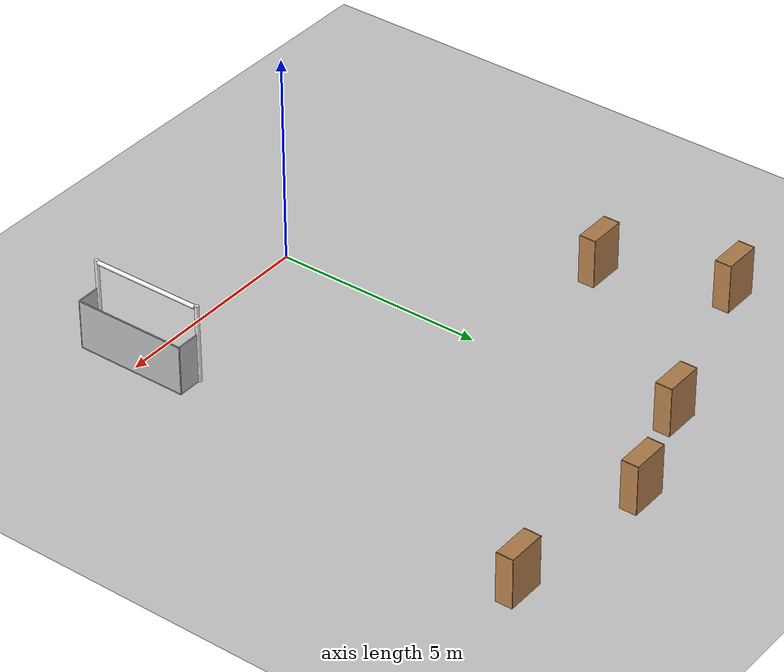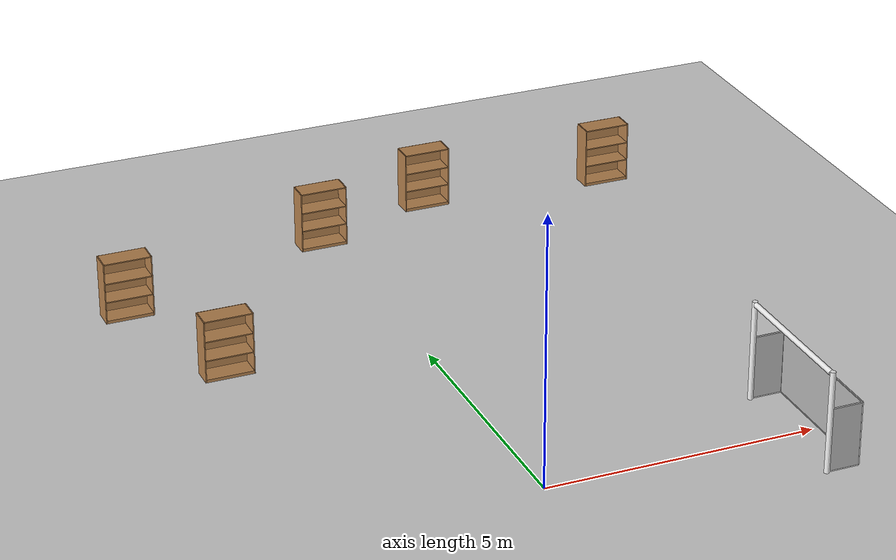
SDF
<sdf version="1.6">
 <world name="default">
  <model name="ground_plane">
   <static>1</static>
   <link name="link">
    <collision name="collision">
     <geometry><plane><normal>0 0 1</normal><size>100 100</size></plane></geometry>
     <surface><friction><ode><mu>100</mu><mu2>50</mu2></ode></friction></surface>
    </collision>
    <visual name="visual">
     <cast_shadows>0</cast_shadows>
     <geometry><plane><normal>0 0 1</normal><size>100 100</size></plane></geometry>
     <material>
      <script><uri>file://media/materials/scripts/gazebo.material</uri><name>Gazebo/Grey</name></script>
     </material>
    </visual>
   </link>
  </model>
  <model name="teensize_goal">
   <static>1</static>
   <link name="left_post">
    <pose>0 1.35 0.95 0 -0 0</pose>
    <collision name="collision">
     <geometry><cylinder><radius>0.05</radius><length>1.9</length></cylinder></geometry>
    </collision>
    <visual name="visual">
     <geometry><cylinder><radius>0.05</radius><length>1.9</length></cylinder></geometry>
     <material>
      <script><uri>file://media/materials/scripts/gazebo.material</uri><name>Gazebo/White</name></script>
     </material>
    </visual>
   </link>
   <link name="left_support_horiz_lower">
    <pose>0.3 1.35 0.01 0 -0 0</pose>
    <collision name="collision"><geometry><box><size>0.6 0.02 0.02</size></box></geometry></collision>
    <visual name="visual">
     <geometry><box><size>0.6 0.02 0.02</size></box></geometry>
     <material>
      <script><uri>file://media/materials/scripts/gazebo.material</uri><name>Gazebo/White</name></script>
     </material>
    </visual>
   </link>
   <link name="left_support_horiz_upper">
    <pose>0.3 1.35 1.2 0 -0 0</pose>
    <collision name="collision"><geometry><box><size>0.6 0.02 0.02</size></box></geometry></collision>
    <visual name="visual">
     <geometry><box><size>0.6 0.02 0.02</size></box></geometry>
     <material>
      <script><uri>file://media/materials/scripts/gazebo.material</uri><name>Gazebo/White</name></script>
     </material>
    </visual>
   </link>
   <link name="left_support_vertical">
    <pose>0.6 1.35 0.6 3.14159 1.57079 3.14159</pose>
    <collision name="collision"><geometry><box><size>1.2 0.02 0.02</size></box></geometry></collision>
    <visual name="visual">
     <geometry><box><size>1.2 0.02 0.02</size></box></geometry>
     <material>
      <script><uri>file://media/materials/scripts/gazebo.material</uri><name>Gazebo/White</name></script>
     </material>
    </visual>
   </link>
   <link name="right_support_horiz_lower">
    <pose>0.3 -1.35 0.01 0 -0 0</pose>
    <collision name="collision"><geometry><box><size>0.6 0.02 0.02</size></box></geometry></collision>
    <visual name="visual">
     <geometry><box><size>0.6 0.02 0.02</size></box></geometry>
     <material>
      <script><uri>file://media/materials/scripts/gazebo.material</uri><name>Gazebo/White</name></script>
     </material>
    </visual>
   </link>
   <link name="right_support_horiz_upper">
    <pose>0.3 -1.35 1.2 0 -0 0</pose>
    <collision name="collision"><geometry><box><size>0.6 0.02 0.02</size></box></geometry></collision>
    <visual name="visual">
     <geometry><box><size>0.6 0.02 0.02</size></box></geometry>
     <material>
      <script><uri>file://media/materials/scripts/gazebo.material</uri><name>Gazebo/White</name></script>
     </material>
    </visual>
   </link>
   <link name="right_support_vertical">
    <pose>0.6 -1.35 0.6 3.14159 1.57079 3.14159</pose>
    <collision name="collision"><geometry><box><size>1.2 0.02 0.02</size></box></geometry></collision>
    <visual name="visual">
     <geometry><box><size>1.2 0.02 0.02</size></box></geometry>
     <material>
      <script><uri>file://media/materials/scripts/gazebo.material</uri><name>Gazebo/White</name></script>
     </material>
    </visual>
   </link>
   <link name="center_support_horiz_lower">
    <pose>0.6 0 0.01 3.14159 1.57079 3.14159</pose>
    <collision name="collision"><geometry><box><size>0.02 2.7 0.02</size></box></geometry></collision>
    <visual name="visual">
     <geometry><box><size>0.02 2.7 0.02</size></box></geometry>
     <material>
      <script><uri>file://media/materials/scripts/gazebo.material</uri><name>Gazebo/White</name></script>
     </material>
    </visual>
   </link>
   <link name="center_support_horiz_upper">
    <pose>0.6 0 1.2 3.14159 1.57079 3.14159</pose>
    <collision name="collision"><geometry><box><size>0.02 2.7 0.02</size></box></geometry></collision>
    <visual name="visual">
     <geometry><box><size>0.02 2.7 0.02</size></box></geometry>
     <material>
      <script><uri>file://media/materials/scripts/gazebo.material</uri><name>Gazebo/White</name></script>
     </material>
    </visual>
   </link>
   <link name="right_post">
    <pose>0 -1.35 0.95 0 -0 0</pose>
    <collision name="collision">
     <geometry><cylinder><radius>0.05</radius><length>1.9</length></cylinder></geometry>
    </collision>
    <visual name="visual">
     <geometry><cylinder><radius>0.05</radius><length>1.9</length></cylinder></geometry>
     <material>
      <script><uri>file://media/materials/scripts/gazebo.material</uri><name>Gazebo/White</name></script>
     </material>
    </visual>
   </link>
   <link name="crossbar">
    <pose>0 0 1.85 1.57 1.57 0</pose>
    <collision name="collision">
     <geometry><cylinder><radius>0.05</radius><length>2.6</length></cylinder></geometry>
    </collision>
    <visual name="visual">
     <geometry><cylinder><radius>0.05</radius><length>2.6</length></cylinder></geometry>
     <material>
      <script><uri>file://media/materials/scripts/gazebo.material</uri><name>Gazebo/White</name></script>
     </material>
    </visual>
   </link>
   <link name="center_net">
    <pose>0.6 0 0.6 0 -0 0</pose>
    <collision name="collision"><geometry><box><size>0.01 2.7 1.2</size></box></geometry></collision>
    <visual name="visual">
     <geometry><box><size>0.01 2.7 1.2</size></box></geometry>
     <material>
      <script>
       <uri>model://teensize_goal/materials/scripts/</uri>
       <uri>model://teensize_goal/materials/textures/</uri>
       <name>RoboCup/Net</name>
      </script>
     </material>
    </visual>
   </link>
   <link name="left_net">
    <pose>0.3 1.35 0.6 0 -0 0</pose>
    <collision name="collision"><geometry><box><size>0.6 0.01 1.2</size></box></geometry></collision>
    <visual name="visual">
     <geometry><box><size>0.6 0.01 1.2</size></box></geometry>
     <material>
      <script>
       <uri>model://teensize_goal/materials/scripts/</uri>
       <uri>model://teensize_goal/materials/textures/</uri>
       <name>RoboCup/Net</name>
      </script>
     </material>
    </visual>
   </link>
   <link name="right_net">
    <pose>0.3 -1.35 0.6 0 -0 0</pose>
    <collision name="collision"><geometry><box><size>0.6 0.01 1.2</size></box></geometry></collision>
    <visual name="visual">
     <geometry><box><size>0.6 0.01 1.2</size></box></geometry>
     <material>
      <script>
       <uri>model://teensize_goal/materials/scripts/</uri>
       <uri>model://teensize_goal/materials/textures/</uri>
       <name>RoboCup/Net</name>
      </script>
     </material>
    </visual>
   </link>
   <pose>4.525 0 0 0 -0 0</pose>
  </model>
  <model name="bookshelf_0">
   <static>1</static>
   <link name="link">
    <inertial><mass>1</mass></inertial>
    <collision name="back">
     <pose>0 0.005 0.6 0 -0 0</pose>
     <geometry><box><size>0.9 0.01 1.2</size></box></geometry>
    </collision>
    <visual name="visual1">
     <pose>0 0.005 0.6 0 -0 0</pose>
     <geometry><box><size>0.9 0.01 1.2</size></box></geometry>
     <material>
      <script><uri>file://media/materials/scripts/gazebo.material</uri><name>Gazebo/Wood</name></script>
     </material>
    </visual>
    <collision name="left_side">
     <pose>0.45 -0.195 0.6 0 -0 0</pose>
     <geometry><box><size>0.02 0.4 1.2</size></box></geometry>
    </collision>
    <visual name="visual2">
     <pose>0.45 -0.195 0.6 0 -0 0</pose>
     <geometry><box><size>0.02 0.4 1.2</size></box></geometry>
     <material>
      <script><uri>file://media/materials/scripts/gazebo.material</uri><name>Gazebo/Wood</name></script>
     </material>
    </visual>
    <collision name="right_side">
     <pose>-0.45 -0.195 0.6 0 -0 0</pose>
     <geometry><box><size>0.02 0.4 1.2</size></box></geometry>
    </collision>
    <visual name="visual3">
     <pose>-0.45 -0.195 0.6 0 -0 0</pose>
     <geometry><box><size>0.02 0.4 1.2</size></box></geometry>
     <material>
      <script><uri>file://media/materials/scripts/gazebo.material</uri><name>Gazebo/Wood</name></script>
     </material>
    </visual>
    <collision name="bottom">
     <pose>0 -0.195 0.03 0 -0 0</pose>
     <geometry><box><size>0.88 0.4 0.06</size></box></geometry>
    </collision>
    <visual name="visual4">
     <pose>0 -0.195 0.03 0 -0 0</pose>
     <geometry><box><size>0.88 0.4 0.06</size></box></geometry>
     <material>
      <script><uri>file://media/materials/scripts/gazebo.material</uri><name>Gazebo/Wood</name></script>
     </material>
    </visual>
    <collision name="top">
     <pose>0 -0.195 1.19 0 -0 0</pose>
     <geometry><box><size>0.88 0.4 0.02</size></box></geometry>
    </collision>
    <visual name="visual5">
     <pose>0 -0.195 1.19 0 -0 0</pose>
     <geometry><box><size>0.88 0.4 0.02</size></box></geometry>
     <material>
      <script><uri>file://media/materials/scripts/gazebo.material</uri><name>Gazebo/Wood</name></script>
     </material>
    </visual>
    <collision name="low_shelf">
     <pose>0 -0.195 0.43 0 -0 0</pose>
     <geometry><box><size>0.88 0.4 0.02</size></box></geometry>
    </collision>
    <visual name="visual6">
     <pose>0 -0.195 0.43 0 -0 0</pose>
     <geometry><box><size>0.88 0.4 0.02</size></box></geometry>
     <material>
      <script><uri>file://media/materials/scripts/gazebo.material</uri><name>Gazebo/Wood</name></script>
     </material>
    </visual>
    <collision name="high_shelf">
     <pose>0 -0.195 0.8 0 -0 0</pose>
     <geometry><box><size>0.88 0.4 0.02</size></box></geometry>
    </collision>
    <visual name="visual7">
     <pose>0 -0.195 0.8 0 -0 0</pose>
     <geometry><box><size>0.88 0.4 0.02</size></box></geometry>
     <material>
      <script><uri>file://media/materials/scripts/gazebo.material</uri><name>Gazebo/Wood</name></script>
     </material>
    </visual>
   </link>
   <pose>-0.198887 10.1235 0 0 -0 0</pose>
  </model>
  <model name="bookshelf_1">
   <static>1</static>
   <link name="link">
    <inertial><mass>1</mass></inertial>
    <collision name="back">
     <pose>0 0.005 0.6 0 -0 0</pose>
     <geometry><box><size>0.9 0.01 1.2</size></box></geometry>
    </collision>
    <visual name="visual1">
     <pose>0 0.005 0.6 0 -0 0</pose>
     <geometry><box><size>0.9 0.01 1.2</size></box></geometry>
     <material>
      <script><uri>file://media/materials/scripts/gazebo.material</uri><name>Gazebo/Wood</name></script>
     </material>
    </visual>
    <collision name="left_side">
     <pose>0.45 -0.195 0.6 0 -0 0</pose>
     <geometry><box><size>0.02 0.4 1.2</size></box></geometry>
    </collision>
    <visual name="visual2">
     <pose>0.45 -0.195 0.6 0 -0 0</pose>
     <geometry><box><size>0.02 0.4 1.2</size></box></geometry>
     <material>
      <script><uri>file://media/materials/scripts/gazebo.material</uri><name>Gazebo/Wood</name></script>
     </material>
    </visual>
    <collision name="right_side">
     <pose>-0.45 -0.195 0.6 0 -0 0</pose>
     <geometry><box><size>0.02 0.4 1.2</size></box></geometry>
    </collision>
    <visual name="visual3">
     <pose>-0.45 -0.195 0.6 0 -0 0</pose>
     <geometry><box><size>0.02 0.4 1.2</size></box></geometry>
     <material>
      <script><uri>file://media/materials/scripts/gazebo.material</uri><name>Gazebo/Wood</name></script>
     </material>
    </visual>
    <collision name="bottom">
     <pose>0 -0.195 0.03 0 -0 0</pose>
     <geometry><box><size>0.88 0.4 0.06</size></box></geometry>
    </collision>
    <visual name="visual4">
     <pose>0 -0.195 0.03 0 -0 0</pose>
     <geometry><box><size>0.88 0.4 0.06</size></box></geometry>
     <material>
      <script><uri>file://media/materials/scripts/gazebo.material</uri><name>Gazebo/Wood</name></script>
     </material>
    </visual>
    <collision name="top">
     <pose>0 -0.195 1.19 0 -0 0</pose>
     <geometry><box><size>0.88 0.4 0.02</size></box></geometry>
    </collision>
    <visual name="visual5">
     <pose>0 -0.195 1.19 0 -0 0</pose>
     <geometry><box><size>0.88 0.4 0.02</size></box></geometry>
     <material>
      <script><uri>file://media/materials/scripts/gazebo.material</uri><name>Gazebo/Wood</name></script>
     </material>
    </visual>
    <collision name="low_shelf">
     <pose>0 -0.195 0.43 0 -0 0</pose>
     <geometry><box><size>0.88 0.4 0.02</size></box></geometry>
    </collision>
    <visual name="visual6">
     <pose>0 -0.195 0.43 0 -0 0</pose>
     <geometry><box><size>0.88 0.4 0.02</size></box></geometry>
     <material>
      <script><uri>file://media/materials/scripts/gazebo.material</uri><name>Gazebo/Wood</name></script>
     </material>
    </visual>
    <collision name="high_shelf">
     <pose>0 -0.195 0.8 0 -0 0</pose>
     <geometry><box><size>0.88 0.4 0.02</size></box></geometry>
    </collision>
    <visual name="visual7">
     <pose>0 -0.195 0.8 0 -0 0</pose>
     <geometry><box><size>0.88 0.4 0.02</size></box></geometry>
     <material>
      <script><uri>file://media/materials/scripts/gazebo.material</uri><name>Gazebo/Wood</name></script>
     </material>
    </visual>
   </link>
   <pose>-4.48308 8.75314 0 0 -0 0</pose>
  </model>
  <model name="bookshelf_2">
   <static>1</static>
   <link name="link">
    <inertial><mass>1</mass></inertial>
    <collision name="back">
     <pose>0 0.005 0.6 0 -0 0</pose>
     <geometry><box><size>0.9 0.01 1.2</size></box></geometry>
    </collision>
    <visual name="visual1">
     <pose>0 0.005 0.6 0 -0 0</pose>
     <geometry><box><size>0.9 0.01 1.2</size></box></geometry>
     <material>
      <script><uri>file://media/materials/scripts/gazebo.material</uri><name>Gazebo/Wood</name></script>
     </material>
    </visual>
    <collision name="left_side">
     <pose>0.45 -0.195 0.6 0 -0 0</pose>
     <geometry><box><size>0.02 0.4 1.2</size></box></geometry>
    </collision>
    <visual name="visual2">
     <pose>0.45 -0.195 0.6 0 -0 0</pose>
     <geometry><box><size>0.02 0.4 1.2</size></box></geometry>
     <material>
      <script><uri>file://media/materials/scripts/gazebo.material</uri><name>Gazebo/Wood</name></script>
     </material>
    </visual>
    <collision name="right_side">
     <pose>-0.45 -0.195 0.6 0 -0 0</pose>
     <geometry><box><size>0.02 0.4 1.2</size></box></geometry>
    </collision>
    <visual name="visual3">
     <pose>-0.45 -0.195 0.6 0 -0 0</pose>
     <geometry><box><size>0.02 0.4 1.2</size></box></geometry>
     <material>
      <script><uri>file://media/materials/scripts/gazebo.material</uri><name>Gazebo/Wood</name></script>
     </material>
    </visual>
    <collision name="bottom">
     <pose>0 -0.195 0.03 0 -0 0</pose>
     <geometry><box><size>0.88 0.4 0.06</size></box></geometry>
    </collision>
    <visual name="visual4">
     <pose>0 -0.195 0.03 0 -0 0</pose>
     <geometry><box><size>0.88 0.4 0.06</size></box></geometry>
     <material>
      <script><uri>file://media/materials/scripts/gazebo.material</uri><name>Gazebo/Wood</name></script>
     </material>
    </visual>
    <collision name="top">
     <pose>0 -0.195 1.19 0 -0 0</pose>
     <geometry><box><size>0.88 0.4 0.02</size></box></geometry>
    </collision>
    <visual name="visual5">
     <pose>0 -0.195 1.19 0 -0 0</pose>
     <geometry><box><size>0.88 0.4 0.02</size></box></geometry>
     <material>
      <script><uri>file://media/materials/scripts/gazebo.material</uri><name>Gazebo/Wood</name></script>
     </material>
    </visual>
    <collision name="low_shelf">
     <pose>0 -0.195 0.43 0 -0 0</pose>
     <geometry><box><size>0.88 0.4 0.02</size></box></geometry>
    </collision>
    <visual name="visual6">
     <pose>0 -0.195 0.43 0 -0 0</pose>
     <geometry><box><size>0.88 0.4 0.02</size></box></geometry>
     <material>
      <script><uri>file://media/materials/scripts/gazebo.material</uri><name>Gazebo/Wood</name></script>
     </material>
    </visual>
    <collision name="high_shelf">
     <pose>0 -0.195 0.8 0 -0 0</pose>
     <geometry><box><size>0.88 0.4 0.02</size></box></geometry>
    </collision>
    <visual name="visual7">
     <pose>0 -0.195 0.8 0 -0 0</pose>
     <geometry><box><size>0.88 0.4 0.02</size></box></geometry>
     <material>
      <script><uri>file://media/materials/scripts/gazebo.material</uri><name>Gazebo/Wood</name></script>
     </material>
    </visual>
   </link>
   <pose>-3.5213 5.94907 0 0 -0 0</pose>
  </model>
  <model name="bookshelf_3">
   <static>1</static>
   <link name="link">
    <inertial><mass>1</mass></inertial>
    <collision name="back">
     <pose>0 0.005 0.6 0 -0 0</pose>
     <geometry><box><size>0.9 0.01 1.2</size></box></geometry>
    </collision>
    <visual name="visual1">
     <pose>0 0.005 0.6 0 -0 0</pose>
     <geometry><box><size>0.9 0.01 1.2</size></box></geometry>
     <material>
      <script><uri>file://media/materials/scripts/gazebo.material</uri><name>Gazebo/Wood</name></script>
     </material>
    </visual>
    <collision name="left_side">
     <pose>0.45 -0.195 0.6 0 -0 0</pose>
     <geometry><box><size>0.02 0.4 1.2</size></box></geometry>
    </collision>
    <visual name="visual2">
     <pose>0.45 -0.195 0.6 0 -0 0</pose>
     <geometry><box><size>0.02 0.4 1.2</size></box></geometry>
     <material>
      <script><uri>file://media/materials/scripts/gazebo.material</uri><name>Gazebo/Wood</name></script>
     </material>
    </visual>
    <collision name="right_side">
     <pose>-0.45 -0.195 0.6 0 -0 0</pose>
     <geometry><box><size>0.02 0.4 1.2</size></box></geometry>
    </collision>
    <visual name="visual3">
     <pose>-0.45 -0.195 0.6 0 -0 0</pose>
     <geometry><box><size>0.02 0.4 1.2</size></box></geometry>
     <material>
      <script><uri>file://media/materials/scripts/gazebo.material</uri><name>Gazebo/Wood</name></script>
     </material>
    </visual>
    <collision name="bottom">
     <pose>0 -0.195 0.03 0 -0 0</pose>
     <geometry><box><size>0.88 0.4 0.06</size></box></geometry>
    </collision>
    <visual name="visual4">
     <pose>0 -0.195 0.03 0 -0 0</pose>
     <geometry><box><size>0.88 0.4 0.06</size></box></geometry>
     <material>
      <script><uri>file://media/materials/scripts/gazebo.material</uri><name>Gazebo/Wood</name></script>
     </material>
    </visual>
    <collision name="top">
     <pose>0 -0.195 1.19 0 -0 0</pose>
     <geometry><box><size>0.88 0.4 0.02</size></box></geometry>
    </collision>
    <visual name="visual5">
     <pose>0 -0.195 1.19 0 -0 0</pose>
     <geometry><box><size>0.88 0.4 0.02</size></box></geometry>
     <material>
      <script><uri>file://media/materials/scripts/gazebo.material</uri><name>Gazebo/Wood</name></script>
     </material>
    </visual>
    <collision name="low_shelf">
     <pose>0 -0.195 0.43 0 -0 0</pose>
     <geometry><box><size>0.88 0.4 0.02</size></box></geometry>
    </collision>
    <visual name="visual6">
     <pose>0 -0.195 0.43 0 -0 0</pose>
     <geometry><box><size>0.88 0.4 0.02</size></box></geometry>
     <material>
      <script><uri>file://media/materials/scripts/gazebo.material</uri><name>Gazebo/Wood</name></script>
     </material>
    </visual>
    <collision name="high_shelf">
     <pose>0 -0.195 0.8 0 -0 0</pose>
     <geometry><box><size>0.88 0.4 0.02</size></box></geometry>
    </collision>
    <visual name="visual7">
     <pose>0 -0.195 0.8 0 -0 0</pose>
     <geometry><box><size>0.88 0.4 0.02</size></box></geometry>
     <material>
      <script><uri>file://media/materials/scripts/gazebo.material</uri><name>Gazebo/Wood</name></script>
     </material>
    </visual>
   </link>
   <pose>6.00109 10.6837 0 0 -0 0</pose>
  </model>
  <model name="bookshelf_4">
   <static>1</static>
   <link name="link">
    <inertial><mass>1</mass></inertial>
    <collision name="back">
     <pose>0 0.005 0.6 0 -0 0</pose>
     <geometry><box><size>0.9 0.01 1.2</size></box></geometry>
    </collision>
    <visual name="visual1">
     <pose>0 0.005 0.6 0 -0 0</pose>
     <geometry><box><size>0.9 0.01 1.2</size></box></geometry>
     <material>
      <script><uri>file://media/materials/scripts/gazebo.material</uri><name>Gazebo/Wood</name></script>
     </material>
    </visual>
    <collision name="left_side">
     <pose>0.45 -0.195 0.6 0 -0 0</pose>
     <geometry><box><size>0.02 0.4 1.2</size></box></geometry>
    </collision>
    <visual name="visual2">
     <pose>0.45 -0.195 0.6 0 -0 0</pose>
     <geometry><box><size>0.02 0.4 1.2</size></box></geometry>
     <material>
      <script><uri>file://media/materials/scripts/gazebo.material</uri><name>Gazebo/Wood</name></script>
     </material>
    </visual>
    <collision name="right_side">
     <pose>-0.45 -0.195 0.6 0 -0 0</pose>
     <geometry><box><size>0.02 0.4 1.2</size></box></geometry>
    </collision>
    <visual name="visual3">
     <pose>-0.45 -0.195 0.6 0 -0 0</pose>
     <geometry><box><size>0.02 0.4 1.2</size></box></geometry>
     <material>
      <script><uri>file://media/materials/scripts/gazebo.material</uri><name>Gazebo/Wood</name></script>
     </material>
    </visual>
    <collision name="bottom">
     <pose>0 -0.195 0.03 0 -0 0</pose>
     <geometry><box><size>0.88 0.4 0.06</size></box></geometry>
    </collision>
    <visual name="visual4">
     <pose>0 -0.195 0.03 0 -0 0</pose>
     <geometry><box><size>0.88 0.4 0.06</size></box></geometry>
     <material>
      <script><uri>file://media/materials/scripts/gazebo.material</uri><name>Gazebo/Wood</name></script>
     </material>
    </visual>
    <collision name="top">
     <pose>0 -0.195 1.19 0 -0 0</pose>
     <geometry><box><size>0.88 0.4 0.02</size></box></geometry>
    </collision>
    <visual name="visual5">
     <pose>0 -0.195 1.19 0 -0 0</pose>
     <geometry><box><size>0.88 0.4 0.02</size></box></geometry>
     <material>
      <script><uri>file://media/materials/scripts/gazebo.material</uri><name>Gazebo/Wood</name></script>
     </material>
    </visual>
    <collision name="low_shelf">
     <pose>0 -0.195 0.43 0 -0 0</pose>
     <geometry><box><size>0.88 0.4 0.02</size></box></geometry>
    </collision>
    <visual name="visual6">
     <pose>0 -0.195 0.43 0 -0 0</pose>
     <geometry><box><size>0.88 0.4 0.02</size></box></geometry>
     <material>
      <script><uri>file://media/materials/scripts/gazebo.material</uri><name>Gazebo/Wood</name></script>
     </material>
    </visual>
    <collision name="high_shelf">
     <pose>0 -0.195 0.8 0 -0 0</pose>
     <geometry><box><size>0.88 0.4 0.02</size></box></geometry>
    </collision>
    <visual name="visual7">
     <pose>0 -0.195 0.8 0 -0 0</pose>
     <geometry><box><size>0.88 0.4 0.02</size></box></geometry>
     <material>
      <script><uri>file://media/materials/scripts/gazebo.material</uri><name>Gazebo/Wood</name></script>
     </material>
    </visual>
   </link>
   <pose>2.27217 10.9906 0 0 -0 0</pose>
  </model>
 </world>
</sdf>
